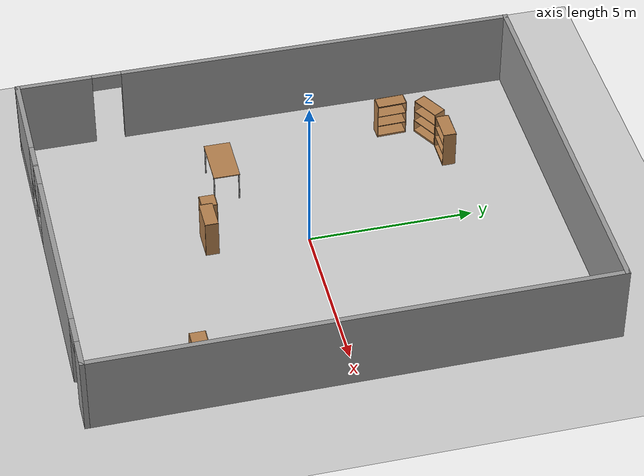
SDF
<sdf version="1.7">
 <world name="default">
  <plugin name="gazebo_ros_state" filename="libgazebo_ros_state.so">
   <ros><namespace>/gazebo</namespace></ros>
   <update_rate>1.0</update_rate>
  </plugin>
  <light name="sun" type="directional">
   <pose>0 0 10 0 -0 0</pose>
   <diffuse>0.8 0.8 0.8 1</diffuse>
   <specular>0.2 0.2 0.2 1</specular>
   <attenuation>
    <range>1000</range>
    <constant>0.9</constant>
    <linear>0.01</linear>
    <quadratic>0.001</quadratic>
   </attenuation>
   <direction>-0.5 0.1 -0.9</direction>
   <spot><inner_angle>0</inner_angle><outer_angle>0</outer_angle><falloff>0</falloff></spot>
  </light>
  <model name="ground_plane">
   <static>1</static>
   <link name="link">
    <collision name="collision">
     <geometry><plane><normal>0 0 1</normal><size>100 100</size></plane></geometry>
     <surface>
      <contact><collide_bitmask>65535</collide_bitmask></contact>
      <friction><ode><mu>100</mu><mu2>50</mu2></ode></friction>
     </surface>
    </collision>
    <visual name="visual">
     <cast_shadows>0</cast_shadows>
     <geometry><plane><normal>0 0 1</normal><size>100 100</size></plane></geometry>
     <material>
      <script><uri>file://media/materials/scripts/gazebo.material</uri><name>Gazebo/Grey</name></script>
     </material>
    </visual>
   </link>
  </model>
  <gravity>0 0 -9.8</gravity>
  <magnetic_field>6e-06 2.3e-05 -4.2e-05</magnetic_field>
  <atmosphere type="adiabatic"/>
  <physics type="ode">
   <max_step_size>0.001</max_step_size>
   <real_time_factor>1</real_time_factor>
   <real_time_update_rate>1000</real_time_update_rate>
  </physics>
  <scene><ambient>0.4 0.4 0.4 1</ambient><background>0.7 0.7 0.7 1</background><shadows>1</shadows></scene>
  <audio><device>default</device></audio>
  <spherical_coordinates>
   <surface_model>EARTH_WGS84</surface_model>
   <latitude_deg>0</latitude_deg>
   <longitude_deg>0</longitude_deg>
   <elevation>0</elevation>
   <heading_deg>0</heading_deg>
  </spherical_coordinates>
  <model name="indoor">
   <pose>-0.010381 0.018075 0 0 -0 0</pose>
   <link name="Wall_10">
    <pose>-5.925 0 0 0 -0 1.5708</pose>
    <visual name="Wall_10_Visual_0">
     <pose>-6.57949 0 1.25 0 -0 0</pose>
     <geometry><box><size>2.34101 0.15 2.5</size></box></geometry>
     <material>
      <script><uri>file://media/materials/scripts/gazebo.material</uri><name>Gazebo/Grey</name></script>
      <ambient>1 1 1 1</ambient>
     </material>
     <meta><layer>0</layer></meta>
    </visual>
    <collision name="Wall_10_Collision_0">
     <geometry><box><size>2.34101 0.15 2.5</size></box></geometry>
     <pose>-6.57949 0 1.25 0 -0 0</pose>
    </collision>
    <visual name="Wall_10_Visual_1">
     <pose>1.62051 0 1.25 0 -0 0</pose>
     <geometry><box><size>12.259 0.15 2.5</size></box></geometry>
     <material>
      <script><uri>file://media/materials/scripts/gazebo.material</uri><name>Gazebo/Grey</name></script>
      <ambient>1 1 1 1</ambient>
     </material>
     <meta><layer>0</layer></meta>
    </visual>
    <collision name="Wall_10_Collision_1">
     <geometry><box><size>12.259 0.15 2.5</size></box></geometry>
     <pose>1.62051 0 1.25 0 -0 0</pose>
    </collision>
    <visual name="Wall_10_Visual_2">
     <pose>-4.95899 0 2.25 0 -0 0</pose>
     <geometry><box><size>0.9 0.15 0.5</size></box></geometry>
     <material>
      <script><uri>file://media/materials/scripts/gazebo.material</uri><name>Gazebo/Grey</name></script>
      <ambient>1 1 1 1</ambient>
     </material>
     <meta><layer>0</layer></meta>
    </visual>
    <collision name="Wall_10_Collision_2">
     <geometry><box><size>0.9 0.15 0.5</size></box></geometry>
     <pose>-4.95899 0 2.25 0 -0 0</pose>
    </collision>
   </link>
   <link name="Wall_7">
    <collision name="Wall_7_Collision">
     <geometry><box><size>12 0.15 2.5</size></box></geometry>
     <pose>0 0 1.25 0 -0 0</pose>
    </collision>
    <visual name="Wall_7_Visual">
     <pose>0 0 1.25 0 -0 0</pose>
     <geometry><box><size>12 0.15 2.5</size></box></geometry>
     <material>
      <script><uri>file://media/materials/scripts/gazebo.material</uri><name>Gazebo/Grey</name></script>
      <ambient>1 1 1 1</ambient>
     </material>
     <meta><layer>0</layer></meta>
    </visual>
    <pose>-0 7.675 0 0 -0 0</pose>
   </link>
   <link name="Wall_8">
    <collision name="Wall_8_Collision">
     <geometry><box><size>15.5 0.15 2.5</size></box></geometry>
     <pose>0 0 1.25 0 -0 0</pose>
    </collision>
    <visual name="Wall_8_Visual">
     <pose>0 0 1.25 0 -0 0</pose>
     <geometry><box><size>15.5 0.15 2.5</size></box></geometry>
     <material>
      <script><uri>file://media/materials/scripts/gazebo.material</uri><name>Gazebo/Grey</name></script>
      <ambient>1 1 1 1</ambient>
     </material>
     <meta><layer>0</layer></meta>
    </visual>
    <pose>5.925 0 0 0 -0 -1.5708</pose>
   </link>
   <link name="Wall_9">
    <pose>-0 -7.675 0 0 -0 3.14159</pose>
    <visual name="Wall_9_Visual_0">
     <pose>-5.54724 0 1.25 0 -0 0</pose>
     <geometry><box><size>0.905516 0.15 2.5</size></box></geometry>
     <material>
      <script><uri>file://media/materials/scripts/gazebo.material</uri><name>Gazebo/Grey</name></script>
      <ambient>1 1 1 1</ambient>
     </material>
     <meta><layer>0</layer></meta>
    </visual>
    <collision name="Wall_9_Collision_0">
     <geometry><box><size>0.905516 0.15 2.5</size></box></geometry>
     <pose>-5.54724 0 1.25 0 -0 0</pose>
    </collision>
    <visual name="Wall_9_Visual_1">
     <pose>-1.36545 0 1.25 0 -0 0</pose>
     <geometry><box><size>5.65807 0.15 2.5</size></box></geometry>
     <material>
      <script><uri>file://media/materials/scripts/gazebo.material</uri><name>Gazebo/Grey</name></script>
      <ambient>1 1 1 1</ambient>
     </material>
     <meta><layer>0</layer></meta>
    </visual>
    <collision name="Wall_9_Collision_1">
     <geometry><box><size>5.65807 0.15 2.5</size></box></geometry>
     <pose>-1.36545 0 1.25 0 -0 0</pose>
    </collision>
    <visual name="Wall_9_Visual_2">
     <pose>3.73179 0 0.25 0 -0 0</pose>
     <geometry><box><size>4.53641 0.15 0.5</size></box></geometry>
     <material>
      <script><uri>file://media/materials/scripts/gazebo.material</uri><name>Gazebo/Grey</name></script>
      <ambient>1 1 1 1</ambient>
     </material>
     <meta><layer>0</layer></meta>
    </visual>
    <collision name="Wall_9_Collision_2">
     <geometry><box><size>4.53641 0.15 0.5</size></box></geometry>
     <pose>3.73179 0 0.25 0 -0 0</pose>
    </collision>
    <visual name="Wall_9_Visual_3">
     <pose>2.28573 0 1.5 0 -0 0</pose>
     <geometry><box><size>0.04429 0.15 2</size></box></geometry>
     <material>
      <script><uri>file://media/materials/scripts/gazebo.material</uri><name>Gazebo/Grey</name></script>
      <ambient>1 1 1 1</ambient>
     </material>
     <meta><layer>0</layer></meta>
    </visual>
    <collision name="Wall_9_Collision_3">
     <geometry><box><size>0.04429 0.15 2</size></box></geometry>
     <pose>2.28573 0 1.5 0 -0 0</pose>
    </collision>
    <visual name="Wall_9_Visual_4">
     <pose>4.55394 0 1.5 0 -0 0</pose>
     <geometry><box><size>2.89212 0.15 2</size></box></geometry>
     <material>
      <script><uri>file://media/materials/scripts/gazebo.material</uri><name>Gazebo/Grey</name></script>
      <ambient>1 1 1 1</ambient>
     </material>
     <meta><layer>0</layer></meta>
    </visual>
    <collision name="Wall_9_Collision_4">
     <geometry><box><size>2.89212 0.15 2</size></box></geometry>
     <pose>4.55394 0 1.5 0 -0 0</pose>
    </collision>
    <visual name="Wall_9_Visual_5">
     <pose>1.86359 0 1.9 0 -0 0</pose>
     <geometry><box><size>0.8 0.15 1.2</size></box></geometry>
     <material>
      <script><uri>file://media/materials/scripts/gazebo.material</uri><name>Gazebo/Grey</name></script>
      <ambient>1 1 1 1</ambient>
     </material>
     <meta><layer>0</layer></meta>
    </visual>
    <collision name="Wall_9_Collision_5">
     <geometry><box><size>0.8 0.15 1.2</size></box></geometry>
     <pose>1.86359 0 1.9 0 -0 0</pose>
    </collision>
    <visual name="Wall_9_Visual_6">
     <pose>2.70788 0 1.9 0 -0 0</pose>
     <geometry><box><size>0.8 0.15 1.2</size></box></geometry>
     <material>
      <script><uri>file://media/materials/scripts/gazebo.material</uri><name>Gazebo/Grey</name></script>
      <ambient>1 1 1 1</ambient>
     </material>
     <meta><layer>0</layer></meta>
    </visual>
    <collision name="Wall_9_Collision_6">
     <geometry><box><size>0.8 0.15 1.2</size></box></geometry>
     <pose>2.70788 0 1.9 0 -0 0</pose>
    </collision>
    <visual name="Wall_9_Visual_7">
     <pose>-4.64448 0 2.25 0 -0 0</pose>
     <geometry><box><size>0.9 0.15 0.5</size></box></geometry>
     <material>
      <script><uri>file://media/materials/scripts/gazebo.material</uri><name>Gazebo/Grey</name></script>
      <ambient>1 1 1 1</ambient>
     </material>
     <meta><layer>0</layer></meta>
    </visual>
    <collision name="Wall_9_Collision_7">
     <geometry><box><size>0.9 0.15 0.5</size></box></geometry>
     <pose>-4.64448 0 2.25 0 -0 0</pose>
    </collision>
   </link>
   <static>1</static>
  </model>
  <model name="bookshelf">
   <static>1</static>
   <link name="link">
    <inertial><mass>1</mass></inertial>
    <collision name="back">
     <pose>0 0.005 0.6 0 -0 0</pose>
     <geometry><box><size>0.9 0.01 1.2</size></box></geometry>
    </collision>
    <visual name="visual1">
     <pose>0 0.005 0.6 0 -0 0</pose>
     <geometry><box><size>0.9 0.01 1.2</size></box></geometry>
     <material>
      <script><uri>file://media/materials/scripts/gazebo.material</uri><name>Gazebo/Wood</name></script>
     </material>
    </visual>
    <collision name="left_side">
     <pose>0.45 -0.195 0.6 0 -0 0</pose>
     <geometry><box><size>0.02 0.4 1.2</size></box></geometry>
    </collision>
    <visual name="visual2">
     <pose>0.45 -0.195 0.6 0 -0 0</pose>
     <geometry><box><size>0.02 0.4 1.2</size></box></geometry>
     <material>
      <script><uri>file://media/materials/scripts/gazebo.material</uri><name>Gazebo/Wood</name></script>
     </material>
    </visual>
    <collision name="right_side">
     <pose>-0.45 -0.195 0.6 0 -0 0</pose>
     <geometry><box><size>0.02 0.4 1.2</size></box></geometry>
    </collision>
    <visual name="visual3">
     <pose>-0.45 -0.195 0.6 0 -0 0</pose>
     <geometry><box><size>0.02 0.4 1.2</size></box></geometry>
     <material>
      <script><uri>file://media/materials/scripts/gazebo.material</uri><name>Gazebo/Wood</name></script>
     </material>
    </visual>
    <collision name="bottom">
     <pose>0 -0.195 0.03 0 -0 0</pose>
     <geometry><box><size>0.88 0.4 0.06</size></box></geometry>
    </collision>
    <visual name="visual4">
     <pose>0 -0.195 0.03 0 -0 0</pose>
     <geometry><box><size>0.88 0.4 0.06</size></box></geometry>
     <material>
      <script><uri>file://media/materials/scripts/gazebo.material</uri><name>Gazebo/Wood</name></script>
     </material>
    </visual>
    <collision name="top">
     <pose>0 -0.195 1.19 0 -0 0</pose>
     <geometry><box><size>0.88 0.4 0.02</size></box></geometry>
    </collision>
    <visual name="visual5">
     <pose>0 -0.195 1.19 0 -0 0</pose>
     <geometry><box><size>0.88 0.4 0.02</size></box></geometry>
     <material>
      <script><uri>file://media/materials/scripts/gazebo.material</uri><name>Gazebo/Wood</name></script>
     </material>
    </visual>
    <collision name="low_shelf">
     <pose>0 -0.195 0.43 0 -0 0</pose>
     <geometry><box><size>0.88 0.4 0.02</size></box></geometry>
    </collision>
    <visual name="visual6">
     <pose>0 -0.195 0.43 0 -0 0</pose>
     <geometry><box><size>0.88 0.4 0.02</size></box></geometry>
     <material>
      <script><uri>file://media/materials/scripts/gazebo.material</uri><name>Gazebo/Wood</name></script>
     </material>
    </visual>
    <collision name="high_shelf">
     <pose>0 -0.195 0.8 0 -0 0</pose>
     <geometry><box><size>0.88 0.4 0.02</size></box></geometry>
    </collision>
    <visual name="visual7">
     <pose>0 -0.195 0.8 0 -0 0</pose>
     <geometry><box><size>0.88 0.4 0.02</size></box></geometry>
     <material>
      <script><uri>file://media/materials/scripts/gazebo.material</uri><name>Gazebo/Wood</name></script>
     </material>
    </visual>
   </link>
   <pose>-4.44541 3.57084 4e-06 -0.001832 5.8e-05 1.60229</pose>
  </model>
  <model name="bookshelf_0">
   <static>1</static>
   <link name="link">
    <inertial><mass>1</mass></inertial>
    <collision name="back">
     <pose>0 0.005 0.6 0 -0 0</pose>
     <geometry><box><size>0.9 0.01 1.2</size></box></geometry>
    </collision>
    <visual name="visual1">
     <pose>0 0.005 0.6 0 -0 0</pose>
     <geometry><box><size>0.9 0.01 1.2</size></box></geometry>
     <material>
      <script><uri>file://media/materials/scripts/gazebo.material</uri><name>Gazebo/Wood</name></script>
     </material>
    </visual>
    <collision name="left_side">
     <pose>0.45 -0.195 0.6 0 -0 0</pose>
     <geometry><box><size>0.02 0.4 1.2</size></box></geometry>
    </collision>
    <visual name="visual2">
     <pose>0.45 -0.195 0.6 0 -0 0</pose>
     <geometry><box><size>0.02 0.4 1.2</size></box></geometry>
     <material>
      <script><uri>file://media/materials/scripts/gazebo.material</uri><name>Gazebo/Wood</name></script>
     </material>
    </visual>
    <collision name="right_side">
     <pose>-0.45 -0.195 0.6 0 -0 0</pose>
     <geometry><box><size>0.02 0.4 1.2</size></box></geometry>
    </collision>
    <visual name="visual3">
     <pose>-0.45 -0.195 0.6 0 -0 0</pose>
     <geometry><box><size>0.02 0.4 1.2</size></box></geometry>
     <material>
      <script><uri>file://media/materials/scripts/gazebo.material</uri><name>Gazebo/Wood</name></script>
     </material>
    </visual>
    <collision name="bottom">
     <pose>0 -0.195 0.03 0 -0 0</pose>
     <geometry><box><size>0.88 0.4 0.06</size></box></geometry>
    </collision>
    <visual name="visual4">
     <pose>0 -0.195 0.03 0 -0 0</pose>
     <geometry><box><size>0.88 0.4 0.06</size></box></geometry>
     <material>
      <script><uri>file://media/materials/scripts/gazebo.material</uri><name>Gazebo/Wood</name></script>
     </material>
    </visual>
    <collision name="top">
     <pose>0 -0.195 1.19 0 -0 0</pose>
     <geometry><box><size>0.88 0.4 0.02</size></box></geometry>
    </collision>
    <visual name="visual5">
     <pose>0 -0.195 1.19 0 -0 0</pose>
     <geometry><box><size>0.88 0.4 0.02</size></box></geometry>
     <material>
      <script><uri>file://media/materials/scripts/gazebo.material</uri><name>Gazebo/Wood</name></script>
     </material>
    </visual>
    <collision name="low_shelf">
     <pose>0 -0.195 0.43 0 -0 0</pose>
     <geometry><box><size>0.88 0.4 0.02</size></box></geometry>
    </collision>
    <visual name="visual6">
     <pose>0 -0.195 0.43 0 -0 0</pose>
     <geometry><box><size>0.88 0.4 0.02</size></box></geometry>
     <material>
      <script><uri>file://media/materials/scripts/gazebo.material</uri><name>Gazebo/Wood</name></script>
     </material>
    </visual>
    <collision name="high_shelf">
     <pose>0 -0.195 0.8 0 -0 0</pose>
     <geometry><box><size>0.88 0.4 0.02</size></box></geometry>
    </collision>
    <visual name="visual7">
     <pose>0 -0.195 0.8 0 -0 0</pose>
     <geometry><box><size>0.88 0.4 0.02</size></box></geometry>
     <material>
      <script><uri>file://media/materials/scripts/gazebo.material</uri><name>Gazebo/Wood</name></script>
     </material>
    </visual>
   </link>
   <pose>-3.85251 4.86228 0 0 -0 0.500464</pose>
  </model>
  <model name="bookshelf_1">
   <static>1</static>
   <link name="link">
    <inertial><mass>1</mass></inertial>
    <collision name="back">
     <pose>0 0.005 0.6 0 -0 0</pose>
     <geometry><box><size>0.9 0.01 1.2</size></box></geometry>
    </collision>
    <visual name="visual1">
     <pose>0 0.005 0.6 0 -0 0</pose>
     <geometry><box><size>0.9 0.01 1.2</size></box></geometry>
     <material>
      <script><uri>file://media/materials/scripts/gazebo.material</uri><name>Gazebo/Wood</name></script>
     </material>
    </visual>
    <collision name="left_side">
     <pose>0.45 -0.195 0.6 0 -0 0</pose>
     <geometry><box><size>0.02 0.4 1.2</size></box></geometry>
    </collision>
    <visual name="visual2">
     <pose>0.45 -0.195 0.6 0 -0 0</pose>
     <geometry><box><size>0.02 0.4 1.2</size></box></geometry>
     <material>
      <script><uri>file://media/materials/scripts/gazebo.material</uri><name>Gazebo/Wood</name></script>
     </material>
    </visual>
    <collision name="right_side">
     <pose>-0.45 -0.195 0.6 0 -0 0</pose>
     <geometry><box><size>0.02 0.4 1.2</size></box></geometry>
    </collision>
    <visual name="visual3">
     <pose>-0.45 -0.195 0.6 0 -0 0</pose>
     <geometry><box><size>0.02 0.4 1.2</size></box></geometry>
     <material>
      <script><uri>file://media/materials/scripts/gazebo.material</uri><name>Gazebo/Wood</name></script>
     </material>
    </visual>
    <collision name="bottom">
     <pose>0 -0.195 0.03 0 -0 0</pose>
     <geometry><box><size>0.88 0.4 0.06</size></box></geometry>
    </collision>
    <visual name="visual4">
     <pose>0 -0.195 0.03 0 -0 0</pose>
     <geometry><box><size>0.88 0.4 0.06</size></box></geometry>
     <material>
      <script><uri>file://media/materials/scripts/gazebo.material</uri><name>Gazebo/Wood</name></script>
     </material>
    </visual>
    <collision name="top">
     <pose>0 -0.195 1.19 0 -0 0</pose>
     <geometry><box><size>0.88 0.4 0.02</size></box></geometry>
    </collision>
    <visual name="visual5">
     <pose>0 -0.195 1.19 0 -0 0</pose>
     <geometry><box><size>0.88 0.4 0.02</size></box></geometry>
     <material>
      <script><uri>file://media/materials/scripts/gazebo.material</uri><name>Gazebo/Wood</name></script>
     </material>
    </visual>
    <collision name="low_shelf">
     <pose>0 -0.195 0.43 0 -0 0</pose>
     <geometry><box><size>0.88 0.4 0.02</size></box></geometry>
    </collision>
    <visual name="visual6">
     <pose>0 -0.195 0.43 0 -0 0</pose>
     <geometry><box><size>0.88 0.4 0.02</size></box></geometry>
     <material>
      <script><uri>file://media/materials/scripts/gazebo.material</uri><name>Gazebo/Wood</name></script>
     </material>
    </visual>
    <collision name="high_shelf">
     <pose>0 -0.195 0.8 0 -0 0</pose>
     <geometry><box><size>0.88 0.4 0.02</size></box></geometry>
    </collision>
    <visual name="visual7">
     <pose>0 -0.195 0.8 0 -0 0</pose>
     <geometry><box><size>0.88 0.4 0.02</size></box></geometry>
     <material>
      <script><uri>file://media/materials/scripts/gazebo.material</uri><name>Gazebo/Wood</name></script>
     </material>
    </visual>
   </link>
   <pose>-2.74338 5.124 -0 0 -0 0</pose>
  </model>
  <model name="table">
   <static>1</static>
   <link name="link">
    <collision name="surface">
     <pose>0 0 1 0 -0 0</pose>
     <geometry><box><size>1.5 0.8 0.03</size></box></geometry>
     <surface><friction><ode><mu>0.6</mu><mu2>0.6</mu2></ode></friction></surface>
    </collision>
    <visual name="visual1">
     <pose>0 0 1 0 -0 0</pose>
     <geometry><box><size>1.5 0.8 0.03</size></box></geometry>
     <material>
      <script><uri>file://media/materials/scripts/gazebo.material</uri><name>Gazebo/Wood</name></script>
     </material>
    </visual>
    <collision name="front_left_leg">
     <pose>0.68 0.38 0.5 0 -0 0</pose>
     <geometry><cylinder><radius>0.02</radius><length>1</length></cylinder></geometry>
    </collision>
    <visual name="front_left_leg">
     <pose>0.68 0.38 0.5 0 -0 0</pose>
     <geometry><cylinder><radius>0.02</radius><length>1</length></cylinder></geometry>
     <material>
      <script><uri>file://media/materials/scripts/gazebo.material</uri><name>Gazebo/Grey</name></script>
     </material>
    </visual>
    <collision name="front_right_leg">
     <pose>0.68 -0.38 0.5 0 -0 0</pose>
     <geometry><cylinder><radius>0.02</radius><length>1</length></cylinder></geometry>
    </collision>
    <visual name="front_right_leg">
     <pose>0.68 -0.38 0.5 0 -0 0</pose>
     <geometry><cylinder><radius>0.02</radius><length>1</length></cylinder></geometry>
     <material>
      <script><uri>file://media/materials/scripts/gazebo.material</uri><name>Gazebo/Grey</name></script>
     </material>
    </visual>
    <collision name="back_right_leg">
     <pose>-0.68 -0.38 0.5 0 -0 0</pose>
     <geometry><cylinder><radius>0.02</radius><length>1</length></cylinder></geometry>
    </collision>
    <visual name="back_right_leg">
     <pose>-0.68 -0.38 0.5 0 -0 0</pose>
     <geometry><cylinder><radius>0.02</radius><length>1</length></cylinder></geometry>
     <material>
      <script><uri>file://media/materials/scripts/gazebo.material</uri><name>Gazebo/Grey</name></script>
     </material>
    </visual>
    <collision name="back_left_leg">
     <pose>-0.68 0.38 0.5 0 -0 0</pose>
     <geometry><cylinder><radius>0.02</radius><length>1</length></cylinder></geometry>
    </collision>
    <visual name="back_left_leg">
     <pose>-0.68 0.38 0.5 0 -0 0</pose>
     <geometry><cylinder><radius>0.02</radius><length>1</length></cylinder></geometry>
     <material>
      <script><uri>file://media/materials/scripts/gazebo.material</uri><name>Gazebo/Grey</name></script>
     </material>
    </visual>
   </link>
   <pose>-2.94495 -2.01504 0 0 -0 0</pose>
  </model>
  <model name="cabinet">
   <static>1</static>
   <link name="cabinet_bottom_plate">
    <inertial>
     <pose>0 0 -1 0 -0 0</pose>
     <inertia><ixx>2.05</ixx><ixy>0</ixy><ixz>0</ixz><iyy>2.05</iyy><iyz>0</iyz><izz>2.05</izz></inertia>
     <mass>25</mass>
    </inertial>
    <collision name="cabinet_bottom_plate_geom">
     <pose>0 0 0.01 0 -0 0</pose>
     <geometry><box><size>0.45 0.45 0.02</size></box></geometry>
    </collision>
    <visual name="cabinet_bottom_plate_geom_visual">
     <pose>0 0 0.01 0 -0 0</pose>
     <geometry><box><size>0.45 0.45 0.02</size></box></geometry>
     <material>
      <script><uri>file://media/materials/scripts/gazebo.material</uri><name>Gazebo/Wood</name></script>
     </material>
    </visual>
    <collision name="cabinet_bottom_plate_geom_cabinet_back_plate">
     <pose>0.235 0 0.51 0 -0 0</pose>
     <geometry><box><size>0.02 0.45 1.02</size></box></geometry>
    </collision>
    <visual name="cabinet_bottom_plate_geom_cabinet_back_plate_visual">
     <pose>0.235 0 0.51 0 -0 0</pose>
     <geometry><box><size>0.02 0.45 1.02</size></box></geometry>
     <material>
      <script><uri>file://media/materials/scripts/gazebo.material</uri><name>Gazebo/Wood</name></script>
     </material>
    </visual>
    <collision name="cabinet_bottom_plate_geom_cabinet_left_plate">
     <pose>0 0.235 0.51 0 -0 0</pose>
     <geometry><box><size>0.45 0.02 1.02</size></box></geometry>
    </collision>
    <visual name="cabinet_bottom_plate_geom_cabinet_left_plate_visual">
     <pose>0 0.235 0.51 0 -0 0</pose>
     <geometry><box><size>0.45 0.02 1.02</size></box></geometry>
     <material>
      <script><uri>file://media/materials/scripts/gazebo.material</uri><name>Gazebo/Wood</name></script>
     </material>
    </visual>
    <collision name="cabinet_bottom_plate_geom_cabinet_middle_plate">
     <pose>0 0 0.51 0 -0 0</pose>
     <geometry><box><size>0.45 0.45 0.02</size></box></geometry>
    </collision>
    <visual name="cabinet_bottom_plate_geom_cabinet_middle_plate_visual">
     <pose>0 0 0.51 0 -0 0</pose>
     <geometry><box><size>0.45 0.45 0.02</size></box></geometry>
     <material>
      <script><uri>file://media/materials/scripts/gazebo.material</uri><name>Gazebo/Wood</name></script>
     </material>
    </visual>
    <collision name="cabinet_bottom_plate_geom_cabinet_right_plate">
     <pose>0 -0.235 0.51 0 -0 0</pose>
     <geometry><box><size>0.45 0.02 1.02</size></box></geometry>
    </collision>
    <visual name="cabinet_bottom_plate_geom_cabinet_right_plate_visual">
     <pose>0 -0.235 0.51 0 -0 0</pose>
     <geometry><box><size>0.45 0.02 1.02</size></box></geometry>
     <material>
      <script><uri>file://media/materials/scripts/gazebo.material</uri><name>Gazebo/Wood</name></script>
     </material>
    </visual>
    <collision name="cabinet_bottom_plate_geom_cabinet_top_plate">
     <pose>0 0 1.01 0 -0 0</pose>
     <geometry><box><size>0.45 0.45 0.02</size></box></geometry>
    </collision>
    <visual name="cabinet_bottom_plate_geom_cabinet_top_plate_visual">
     <pose>0 0 1.01 0 -0 0</pose>
     <geometry><box><size>0.45 0.45 0.02</size></box></geometry>
     <material>
      <script><uri>file://media/materials/scripts/gazebo.material</uri><name>Gazebo/Wood</name></script>
     </material>
    </visual>
   </link>
   <pose>4.25457 -4.17258 0 0 -0 0</pose>
  </model>
  <model name="cabinet_0">
   <static>1</static>
   <link name="cabinet_bottom_plate">
    <inertial>
     <pose>0 0 -1 0 -0 0</pose>
     <inertia><ixx>2.05</ixx><ixy>0</ixy><ixz>0</ixz><iyy>2.05</iyy><iyz>0</iyz><izz>2.05</izz></inertia>
     <mass>25</mass>
    </inertial>
    <collision name="cabinet_bottom_plate_geom">
     <pose>0 0 0.01 0 -0 0</pose>
     <geometry><box><size>0.45 0.45 0.02</size></box></geometry>
    </collision>
    <visual name="cabinet_bottom_plate_geom_visual">
     <pose>0 0 0.01 0 -0 0</pose>
     <geometry><box><size>0.45 0.45 0.02</size></box></geometry>
     <material>
      <script><uri>file://media/materials/scripts/gazebo.material</uri><name>Gazebo/Wood</name></script>
     </material>
    </visual>
    <collision name="cabinet_bottom_plate_geom_cabinet_back_plate">
     <pose>0.235 0 0.51 0 -0 0</pose>
     <geometry><box><size>0.02 0.45 1.02</size></box></geometry>
    </collision>
    <visual name="cabinet_bottom_plate_geom_cabinet_back_plate_visual">
     <pose>0.235 0 0.51 0 -0 0</pose>
     <geometry><box><size>0.02 0.45 1.02</size></box></geometry>
     <material>
      <script><uri>file://media/materials/scripts/gazebo.material</uri><name>Gazebo/Wood</name></script>
     </material>
    </visual>
    <collision name="cabinet_bottom_plate_geom_cabinet_left_plate">
     <pose>0 0.235 0.51 0 -0 0</pose>
     <geometry><box><size>0.45 0.02 1.02</size></box></geometry>
    </collision>
    <visual name="cabinet_bottom_plate_geom_cabinet_left_plate_visual">
     <pose>0 0.235 0.51 0 -0 0</pose>
     <geometry><box><size>0.45 0.02 1.02</size></box></geometry>
     <material>
      <script><uri>file://media/materials/scripts/gazebo.material</uri><name>Gazebo/Wood</name></script>
     </material>
    </visual>
    <collision name="cabinet_bottom_plate_geom_cabinet_middle_plate">
     <pose>0 0 0.51 0 -0 0</pose>
     <geometry><box><size>0.45 0.45 0.02</size></box></geometry>
    </collision>
    <visual name="cabinet_bottom_plate_geom_cabinet_middle_plate_visual">
     <pose>0 0 0.51 0 -0 0</pose>
     <geometry><box><size>0.45 0.45 0.02</size></box></geometry>
     <material>
      <script><uri>file://media/materials/scripts/gazebo.material</uri><name>Gazebo/Wood</name></script>
     </material>
    </visual>
    <collision name="cabinet_bottom_plate_geom_cabinet_right_plate">
     <pose>0 -0.235 0.51 0 -0 0</pose>
     <geometry><box><size>0.45 0.02 1.02</size></box></geometry>
    </collision>
    <visual name="cabinet_bottom_plate_geom_cabinet_right_plate_visual">
     <pose>0 -0.235 0.51 0 -0 0</pose>
     <geometry><box><size>0.45 0.02 1.02</size></box></geometry>
     <material>
      <script><uri>file://media/materials/scripts/gazebo.material</uri><name>Gazebo/Wood</name></script>
     </material>
    </visual>
    <collision name="cabinet_bottom_plate_geom_cabinet_top_plate">
     <pose>0 0 1.01 0 -0 0</pose>
     <geometry><box><size>0.45 0.45 0.02</size></box></geometry>
    </collision>
    <visual name="cabinet_bottom_plate_geom_cabinet_top_plate_visual">
     <pose>0 0 1.01 0 -0 0</pose>
     <geometry><box><size>0.45 0.45 0.02</size></box></geometry>
     <material>
      <script><uri>file://media/materials/scripts/gazebo.material</uri><name>Gazebo/Wood</name></script>
     </material>
    </visual>
   </link>
   <pose>4.70306 -4.7526 0 0 -0 0</pose>
  </model>
  <model name="cabinet_1">
   <static>1</static>
   <link name="cabinet_bottom_plate">
    <inertial>
     <pose>0 0 -1 0 -0 0</pose>
     <inertia><ixx>2.05</ixx><ixy>0</ixy><ixz>0</ixz><iyy>2.05</iyy><iyz>0</iyz><izz>2.05</izz></inertia>
     <mass>25</mass>
    </inertial>
    <collision name="cabinet_bottom_plate_geom">
     <pose>0 0 0.01 0 -0 0</pose>
     <geometry><box><size>0.45 0.45 0.02</size></box></geometry>
    </collision>
    <visual name="cabinet_bottom_plate_geom_visual">
     <pose>0 0 0.01 0 -0 0</pose>
     <geometry><box><size>0.45 0.45 0.02</size></box></geometry>
     <material>
      <script><uri>file://media/materials/scripts/gazebo.material</uri><name>Gazebo/Wood</name></script>
     </material>
    </visual>
    <collision name="cabinet_bottom_plate_geom_cabinet_back_plate">
     <pose>0.235 0 0.51 0 -0 0</pose>
     <geometry><box><size>0.02 0.45 1.02</size></box></geometry>
    </collision>
    <visual name="cabinet_bottom_plate_geom_cabinet_back_plate_visual">
     <pose>0.235 0 0.51 0 -0 0</pose>
     <geometry><box><size>0.02 0.45 1.02</size></box></geometry>
     <material>
      <script><uri>file://media/materials/scripts/gazebo.material</uri><name>Gazebo/Wood</name></script>
     </material>
    </visual>
    <collision name="cabinet_bottom_plate_geom_cabinet_left_plate">
     <pose>0 0.235 0.51 0 -0 0</pose>
     <geometry><box><size>0.45 0.02 1.02</size></box></geometry>
    </collision>
    <visual name="cabinet_bottom_plate_geom_cabinet_left_plate_visual">
     <pose>0 0.235 0.51 0 -0 0</pose>
     <geometry><box><size>0.45 0.02 1.02</size></box></geometry>
     <material>
      <script><uri>file://media/materials/scripts/gazebo.material</uri><name>Gazebo/Wood</name></script>
     </material>
    </visual>
    <collision name="cabinet_bottom_plate_geom_cabinet_middle_plate">
     <pose>0 0 0.51 0 -0 0</pose>
     <geometry><box><size>0.45 0.45 0.02</size></box></geometry>
    </collision>
    <visual name="cabinet_bottom_plate_geom_cabinet_middle_plate_visual">
     <pose>0 0 0.51 0 -0 0</pose>
     <geometry><box><size>0.45 0.45 0.02</size></box></geometry>
     <material>
      <script><uri>file://media/materials/scripts/gazebo.material</uri><name>Gazebo/Wood</name></script>
     </material>
    </visual>
    <collision name="cabinet_bottom_plate_geom_cabinet_right_plate">
     <pose>0 -0.235 0.51 0 -0 0</pose>
     <geometry><box><size>0.45 0.02 1.02</size></box></geometry>
    </collision>
    <visual name="cabinet_bottom_plate_geom_cabinet_right_plate_visual">
     <pose>0 -0.235 0.51 0 -0 0</pose>
     <geometry><box><size>0.45 0.02 1.02</size></box></geometry>
     <material>
      <script><uri>file://media/materials/scripts/gazebo.material</uri><name>Gazebo/Wood</name></script>
     </material>
    </visual>
    <collision name="cabinet_bottom_plate_geom_cabinet_top_plate">
     <pose>0 0 1.01 0 -0 0</pose>
     <geometry><box><size>0.45 0.45 0.02</size></box></geometry>
    </collision>
    <visual name="cabinet_bottom_plate_geom_cabinet_top_plate_visual">
     <pose>0 0 1.01 0 -0 0</pose>
     <geometry><box><size>0.45 0.45 0.02</size></box></geometry>
     <material>
      <script><uri>file://media/materials/scripts/gazebo.material</uri><name>Gazebo/Wood</name></script>
     </material>
    </visual>
   </link>
   <pose>-1.25642 -2.78356 0 0 -0 0</pose>
  </model>
  <model name="bookshelf_2">
   <static>1</static>
   <link name="link">
    <inertial><mass>1</mass></inertial>
    <collision name="back">
     <pose>0 0.005 0.6 0 -0 0</pose>
     <geometry><box><size>0.9 0.01 1.2</size></box></geometry>
    </collision>
    <visual name="visual1">
     <pose>0 0.005 0.6 0 -0 0</pose>
     <geometry><box><size>0.9 0.01 1.2</size></box></geometry>
     <material>
      <script><uri>file://media/materials/scripts/gazebo.material</uri><name>Gazebo/Wood</name></script>
     </material>
    </visual>
    <collision name="left_side">
     <pose>0.45 -0.195 0.6 0 -0 0</pose>
     <geometry><box><size>0.02 0.4 1.2</size></box></geometry>
    </collision>
    <visual name="visual2">
     <pose>0.45 -0.195 0.6 0 -0 0</pose>
     <geometry><box><size>0.02 0.4 1.2</size></box></geometry>
     <material>
      <script><uri>file://media/materials/scripts/gazebo.material</uri><name>Gazebo/Wood</name></script>
     </material>
    </visual>
    <collision name="right_side">
     <pose>-0.45 -0.195 0.6 0 -0 0</pose>
     <geometry><box><size>0.02 0.4 1.2</size></box></geometry>
    </collision>
    <visual name="visual3">
     <pose>-0.45 -0.195 0.6 0 -0 0</pose>
     <geometry><box><size>0.02 0.4 1.2</size></box></geometry>
     <material>
      <script><uri>file://media/materials/scripts/gazebo.material</uri><name>Gazebo/Wood</name></script>
     </material>
    </visual>
    <collision name="bottom">
     <pose>0 -0.195 0.03 0 -0 0</pose>
     <geometry><box><size>0.88 0.4 0.06</size></box></geometry>
    </collision>
    <visual name="visual4">
     <pose>0 -0.195 0.03 0 -0 0</pose>
     <geometry><box><size>0.88 0.4 0.06</size></box></geometry>
     <material>
      <script><uri>file://media/materials/scripts/gazebo.material</uri><name>Gazebo/Wood</name></script>
     </material>
    </visual>
    <collision name="top">
     <pose>0 -0.195 1.19 0 -0 0</pose>
     <geometry><box><size>0.88 0.4 0.02</size></box></geometry>
    </collision>
    <visual name="visual5">
     <pose>0 -0.195 1.19 0 -0 0</pose>
     <geometry><box><size>0.88 0.4 0.02</size></box></geometry>
     <material>
      <script><uri>file://media/materials/scripts/gazebo.material</uri><name>Gazebo/Wood</name></script>
     </material>
    </visual>
    <collision name="low_shelf">
     <pose>0 -0.195 0.43 0 -0 0</pose>
     <geometry><box><size>0.88 0.4 0.02</size></box></geometry>
    </collision>
    <visual name="visual6">
     <pose>0 -0.195 0.43 0 -0 0</pose>
     <geometry><box><size>0.88 0.4 0.02</size></box></geometry>
     <material>
      <script><uri>file://media/materials/scripts/gazebo.material</uri><name>Gazebo/Wood</name></script>
     </material>
    </visual>
    <collision name="high_shelf">
     <pose>0 -0.195 0.8 0 -0 0</pose>
     <geometry><box><size>0.88 0.4 0.02</size></box></geometry>
    </collision>
    <visual name="visual7">
     <pose>0 -0.195 0.8 0 -0 0</pose>
     <geometry><box><size>0.88 0.4 0.02</size></box></geometry>
     <material>
      <script><uri>file://media/materials/scripts/gazebo.material</uri><name>Gazebo/Wood</name></script>
     </material>
    </visual>
   </link>
   <pose>-0.473675 -3.11296 0 0 0 -3.1408</pose>
  </model>
 </world>
</sdf>
